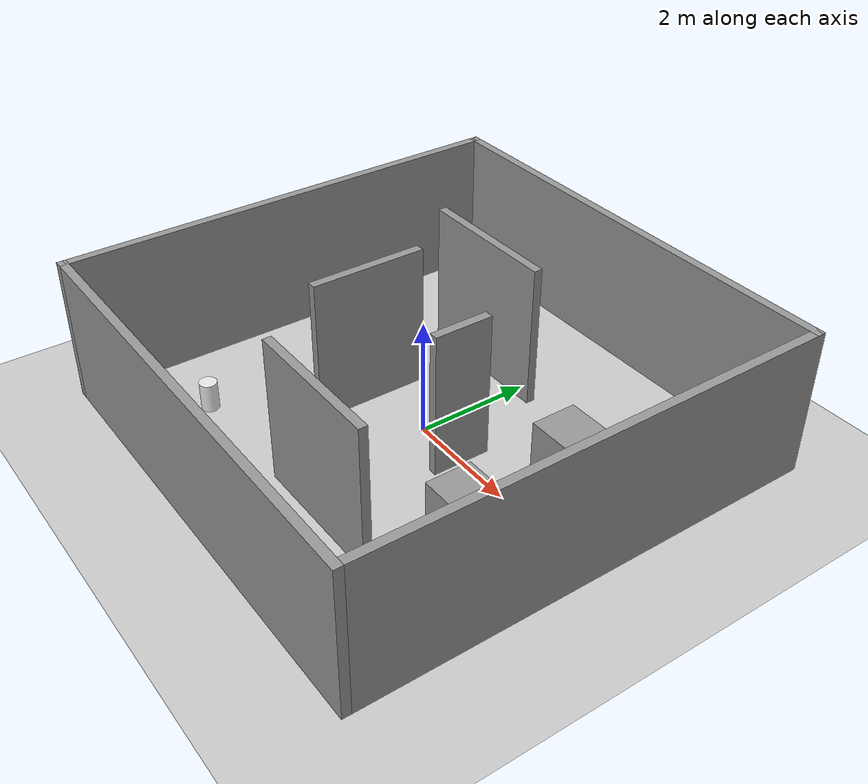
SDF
<sdf version="1.6">
 <world name="default">
  <light name="sun" type="directional">
   <pose>0 0 10 0 -0 0</pose>
   <diffuse>0.8 0.8 0.8 1</diffuse>
   <specular>0.2 0.2 0.2 1</specular>
   <attenuation>
    <range>1000</range>
    <constant>0.9</constant>
    <linear>0.01</linear>
    <quadratic>0.001</quadratic>
   </attenuation>
   <direction>-0.5 0.1 -0.9</direction>
  </light>
  <model name="ground_plane">
   <static>1</static>
   <link name="link">
    <collision name="collision">
     <geometry><plane><normal>0 0 1</normal><size>100 100</size></plane></geometry>
     <surface><friction><ode><mu>100</mu><mu2>50</mu2></ode></friction></surface>
    </collision>
    <visual name="visual">
     <cast_shadows>0</cast_shadows>
     <geometry><plane><normal>0 0 1</normal><size>100 100</size></plane></geometry>
     <material>
      <script><uri>file://media/materials/scripts/gazebo.material</uri><name>Gazebo/Grey</name></script>
     </material>
    </visual>
   </link>
  </model>
  <physics name="default_physics" default="0" type="ode">
   <real_time_update_rate>000.0</real_time_update_rate>
   <max_step_size>0.001</max_step_size>
   <real_time_factor>1</real_time_factor>
   <ode>
    <solver>
     <type>quick</type>
     <iters>150</iters>
     <precon_iters>0</precon_iters>
     <sor>1.4</sor>
     <use_dynamic_moi_rescaling>1</use_dynamic_moi_rescaling>
    </solver>
    <constraints>
     <cfm>1e-05</cfm>
     <erp>0.2</erp>
     <contact_max_correcting_vel>2000</contact_max_correcting_vel>
     <contact_surface_layer>0.01</contact_surface_layer>
    </constraints>
   </ode>
  </physics>
  <model name="train_env_2">
   <link name="Wall_0">
    <collision name="Wall_0_Collision">
     <geometry><box><size>8.15 0.15 2.5</size></box></geometry>
     <pose>0 0 1.25 0 -0 0</pose>
    </collision>
    <visual name="Wall_0_Visual">
     <pose>0 0 1.25 0 -0 0</pose>
     <geometry><box><size>8.15 0.15 2.5</size></box></geometry>
     <material>
      <script><uri>file://media/materials/scripts/gazebo.material</uri><name>Gazebo/Grey</name></script>
      <ambient>1 1 1 1</ambient>
     </material>
     <meta><layer>0</layer></meta>
    </visual>
    <pose>0 -4 0 0 -0 0</pose>
   </link>
   <link name="Wall_10">
    <collision name="Wall_10_Collision">
     <geometry><box><size>1 0.15 2.5</size></box></geometry>
     <pose>0 0 1.25 0 -0 0</pose>
    </collision>
    <visual name="Wall_10_Visual">
     <pose>0 0 1.25 0 -0 0</pose>
     <geometry><box><size>1 0.15 2.5</size></box></geometry>
     <material>
      <script><uri>file://media/materials/scripts/gazebo.material</uri><name>Gazebo/Grey</name></script>
      <ambient>1 1 1 1</ambient>
     </material>
     <meta><layer>0</layer></meta>
    </visual>
    <pose>0.947535 -0.000407 0 0 -0 -1.5708</pose>
   </link>
   <link name="Wall_12">
    <collision name="Wall_12_Collision">
     <geometry><box><size>2.5 0.15 2.5</size></box></geometry>
     <pose>0 0 1.25 0 -0 0</pose>
    </collision>
    <visual name="Wall_12_Visual">
     <pose>0 0 1.25 0 -0 0</pose>
     <geometry><box><size>2.5 0.15 2.5</size></box></geometry>
     <material>
      <script><uri>file://media/materials/scripts/gazebo.material</uri><name>Gazebo/Grey</name></script>
      <ambient>1 1 1 1</ambient>
     </material>
     <meta><layer>0</layer></meta>
    </visual>
    <pose>-0.843171 1.86942 0 0 -0 0</pose>
   </link>
   <link name="Wall_14">
    <collision name="Wall_14_Collision">
     <geometry><box><size>2.5 0.15 2.5</size></box></geometry>
     <pose>0 0 1.25 0 -0 0</pose>
    </collision>
    <visual name="Wall_14_Visual">
     <pose>0 0 1.25 0 -0 0</pose>
     <geometry><box><size>2.5 0.15 2.5</size></box></geometry>
     <material>
      <script><uri>file://media/materials/scripts/gazebo.material</uri><name>Gazebo/Grey</name></script>
      <ambient>1 1 1 1</ambient>
     </material>
     <meta><layer>0</layer></meta>
    </visual>
    <pose>0.890626 -2.43465 0 0 -0 0</pose>
   </link>
   <link name="Wall_2">
    <collision name="Wall_2_Collision">
     <geometry><box><size>8.15 0.15 2.5</size></box></geometry>
     <pose>0 0 1.25 0 -0 0</pose>
    </collision>
    <visual name="Wall_2_Visual">
     <pose>0 0 1.25 0 -0 0</pose>
     <geometry><box><size>8.15 0.15 2.5</size></box></geometry>
     <material>
      <script><uri>file://media/materials/scripts/gazebo.material</uri><name>Gazebo/Grey</name></script>
      <ambient>1 1 1 1</ambient>
     </material>
     <meta><layer>0</layer></meta>
    </visual>
    <pose>0 4 0 0 -0 0</pose>
   </link>
   <link name="Wall_4">
    <collision name="Wall_4_Collision">
     <geometry><box><size>8.15 0.15 2.5</size></box></geometry>
     <pose>0 0 1.25 0 -0 0</pose>
    </collision>
    <visual name="Wall_4_Visual">
     <pose>0 0 1.25 0 -0 0</pose>
     <geometry><box><size>8.15 0.15 2.5</size></box></geometry>
     <material>
      <script><uri>file://media/materials/scripts/gazebo.material</uri><name>Gazebo/Grey</name></script>
      <ambient>1 1 1 1</ambient>
     </material>
     <meta><layer>0</layer></meta>
    </visual>
    <pose>-4 0 0 0 -0 -1.5708</pose>
   </link>
   <link name="Wall_6">
    <collision name="Wall_6_Collision">
     <geometry><box><size>8 0.15 2.5</size></box></geometry>
     <pose>0 0 1.25 0 -0 0</pose>
    </collision>
    <visual name="Wall_6_Visual">
     <pose>0 0 1.25 0 -0 0</pose>
     <geometry><box><size>8 0.15 2.5</size></box></geometry>
     <material>
      <script><uri>file://media/materials/scripts/gazebo.material</uri><name>Gazebo/Grey</name></script>
      <ambient>1 1 1 1</ambient>
     </material>
     <meta><layer>0</layer></meta>
    </visual>
    <pose>4 0.075 0 0 -0 -1.5708</pose>
   </link>
   <link name="Wall_8">
    <collision name="Wall_8_Collision">
     <geometry><box><size>2 0.15 2.5</size></box></geometry>
     <pose>0 0 1.25 0 -0 0</pose>
    </collision>
    <visual name="Wall_8_Visual">
     <pose>0 0 1.25 0 -0 0</pose>
     <geometry><box><size>2 0.15 2.5</size></box></geometry>
     <material>
      <script><uri>file://media/materials/scripts/gazebo.material</uri><name>Gazebo/Grey</name></script>
      <ambient>1 1 1 1</ambient>
     </material>
     <meta><layer>0</layer></meta>
    </visual>
    <pose>-1.22732 -0.196232 0 0 -0 -1.5708</pose>
   </link>
   <static>1</static>
  </model>
  <model name="obstacle">
   <pose>0 0 -6.1e-05 0 -2.6e-05 0</pose>
   <link name="obstacle">
    <collision name="obstacle_1">
     <pose>-2.5 -2.5 0.25 0 -0 0</pose>
     <geometry><cylinder><radius>0.15</radius><length>0.5</length></cylinder></geometry>
    </collision>
    <visual name="obstacle_1">
     <pose>-2.5 -2.5 0.25 0 -0 0</pose>
     <geometry><cylinder><radius>0.15</radius><length>0.5</length></cylinder></geometry>
     <material>
      <script><uri>file://media/materials/scripts/gazebo.material</uri><name>Gazebo/White</name></script>
     </material>
    </visual>
    <collision name="obstacle_2">
     <pose>-2.5 2.5 0.25 0 -0 0</pose>
     <geometry><cylinder><radius>0.15</radius><length>0.5</length></cylinder></geometry>
    </collision>
    <visual name="obstacle_2">
     <pose>-2.5 2.5 0.25 0 -0 0</pose>
     <geometry><cylinder><radius>0.15</radius><length>0.5</length></cylinder></geometry>
     <material>
      <script><uri>file://media/materials/scripts/gazebo.material</uri><name>Gazebo/White</name></script>
     </material>
    </visual>
    <collision name="obstacle_3">
     <pose>2.5 -2.5 0.25 0 -0 0</pose>
     <geometry><cylinder><radius>0.15</radius><length>0.5</length></cylinder></geometry>
    </collision>
    <visual name="obstacle_3">
     <pose>2.5 -2.5 0.25 0 -0 0</pose>
     <geometry><cylinder><radius>0.15</radius><length>0.5</length></cylinder></geometry>
     <material>
      <script><uri>file://media/materials/scripts/gazebo.material</uri><name>Gazebo/White</name></script>
     </material>
    </visual>
    <collision name="obstacle_4">
     <pose>2.5 2.5 0.25 0 -0 0</pose>
     <geometry><cylinder><radius>0.15</radius><length>0.5</length></cylinder></geometry>
    </collision>
    <visual name="obstacle_4">
     <pose>2.5 2.5 0.25 0 -0 0</pose>
     <geometry><cylinder><radius>0.15</radius><length>0.5</length></cylinder></geometry>
     <material>
      <script><uri>file://media/materials/scripts/gazebo.material</uri><name>Gazebo/White</name></script>
     </material>
    </visual>
    <inertial>
     <inertia><ixx>1</ixx><ixy>0</ixy><ixz>0</ixz><iyy>1</iyy><iyz>0</iyz><izz>1</izz></inertia>
     <mass>1</mass>
    </inertial>
   </link>
  </model>
  <scene><ambient>0.4 0.4 0.4 1</ambient><background>0.7 0.7 0.7 1</background><shadows>0</shadows></scene>
  <gravity>0 0 -9.8</gravity>
  <magnetic_field>6e-06 2.3e-05 -4.2e-05</magnetic_field>
  <atmosphere type="adiabatic"/>
  <spherical_coordinates>
   <surface_model>EARTH_WGS84</surface_model>
   <latitude_deg>0</latitude_deg>
   <longitude_deg>0</longitude_deg>
   <elevation>0</elevation>
   <heading_deg>0</heading_deg>
  </spherical_coordinates>
  <model name="unit_box_clone">
   <pose>2.24243 1.06683 0.5 -0 -0 -0</pose>
   <link name="link">
    <inertial>
     <mass>1</mass>
     <inertia>
      <ixx>0.166667</ixx>
      <ixy>0</ixy>
      <ixz>0</ixz>
      <iyy>0.166667</iyy>
      <iyz>0</iyz>
      <izz>0.166667</izz>
     </inertia>
    </inertial>
    <collision name="collision"><geometry><box><size>0.787688 0.786404 1</size></box></geometry></collision>
    <visual name="visual">
     <geometry><box><size>0.787688 0.786404 1</size></box></geometry>
     <material>
      <script><name>Gazebo/Grey</name><uri>file://media/materials/scripts/gazebo.material</uri></script>
     </material>
    </visual>
   </link>
  </model>
  <model name="unit_box_clone_0">
   <pose>2.42202 -1.00341 0.5 -0 -0 -0</pose>
   <link name="link">
    <inertial>
     <mass>1</mass>
     <inertia>
      <ixx>0.166667</ixx>
      <ixy>0</ixy>
      <ixz>0</ixz>
      <iyy>0.166667</iyy>
      <iyz>0</iyz>
      <izz>0.166667</izz>
     </inertia>
    </inertial>
    <collision name="collision"><geometry><box><size>0.787688 0.786404 1</size></box></geometry></collision>
    <visual name="visual">
     <geometry><box><size>0.787688 0.786404 1</size></box></geometry>
     <material>
      <script><name>Gazebo/Grey</name><uri>file://media/materials/scripts/gazebo.material</uri></script>
     </material>
    </visual>
   </link>
  </model>
 </world>
</sdf>
